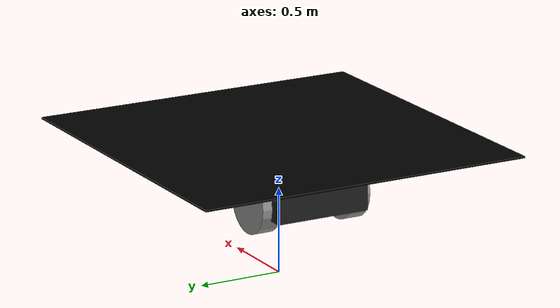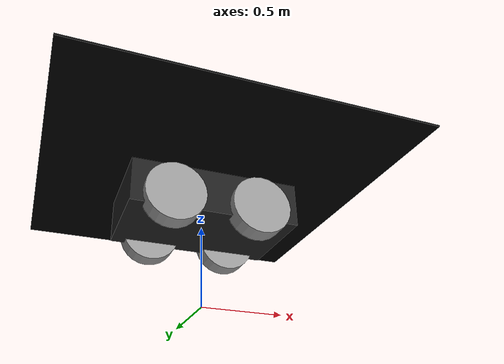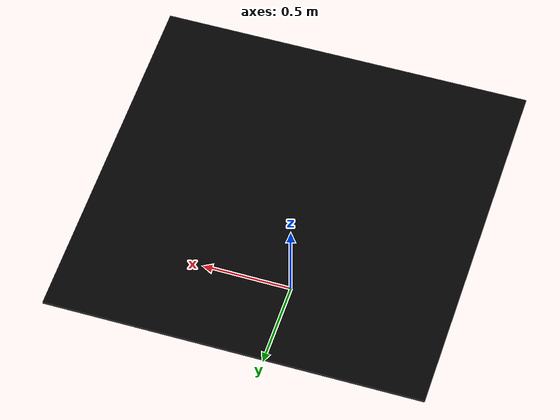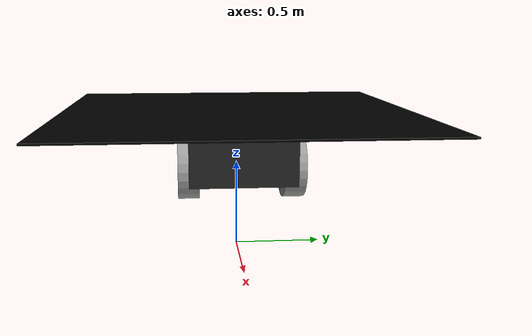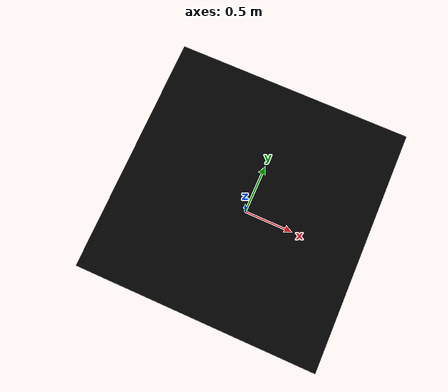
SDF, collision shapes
<?xml version='1.0'?>
<sdf version='1.6'>
  <model name="rover_ardupilot">
    <pose>0 0 0.5 0 0 0</pose>
    <include>
      <uri>model://husky</uri>
      <pose>0 0 0 0 0 0</pose>
    </include>

    <link name="cam_link">
      <pose>0 0 0 0 0 0 </pose>
      <inertial>
        <mass>0.01</mass>
        <inertia>
          <ixx>0.0001</ixx>
          <iyy>0.0001</iyy>
          <izz>0.0001</izz>
        </inertia>
      </inertial>
    <sensor name="chase_cam" type="camera">
      <pose>-3 -1 1.4 0 0.37 0</pose>
      <camera>
        <horizontal_fov>1.2</horizontal_fov>
        <image>
          <width>1920</width>
          <height>1080</height>
        </image>
        <clip>
          <near>0.1</near>
          <far>1000</far>
        </clip>
      </camera>
      <always_on>0</always_on>
      <update_rate>60</update_rate>
      <visualize>false</visualize>
    </sensor>
  </link>
    <joint name="camera_mount" type="fixed">
      <child>cam_link</child>
      <parent>husky::base_link</parent>
      <axis>
        <xyz>0 0 1</xyz>
        <limit>
          <upper>0</upper>
          <lower>0</lower>
        </limit>
      </axis>
    </joint>

    <link name='imu_link'>
      <pose>0 0 0 0 0 0</pose>
      <inertial>
        <pose>0 0 0 0 0 0</pose>
        <mass>0.015</mass>
        <inertia>
          <ixx>1e-05</ixx>
          <ixy>0</ixy>
          <ixz>0</ixz>
          <iyy>1e-05</iyy>
          <iyz>0</iyz>
          <izz>1e-05</izz>
        </inertia>
      </inertial>
      <sensor name="imu_sensor" type="imu">
        <pose>0 0 0 3.141593 0 0</pose>
        <always_on>1</always_on>
        <update_rate>1000.0</update_rate>
      </sensor>
    </link>
    <joint name='imu_joint' type='revolute'>
      <child>imu_link</child>
      <parent>husky::base_link</parent>
      <axis>
        <xyz>1 0 0</xyz>
        <limit>
          <lower>0</lower>
          <upper>0</upper>
          <effort>0</effort>
          <velocity>0</velocity>
        </limit>
        <dynamics>
          <damping>0.7</damping>
        </dynamics>
        <use_parent_model_frame>1</use_parent_model_frame>
      </axis>
    </joint>

    <plugin name="ArduCopter_Plugin" filename="libArduPilotPlugin.so">
      <fdm_addr>127.0.0.1</fdm_addr>
      <fdm_port_in>9002</fdm_port_in>
      <fdm_port_out>9003</fdm_port_out>
      <!--
          Require by APM :
          Only change model and gazebo from XYZ to XY-Z coordinates
      -->
      <modelXYZToAirplaneXForwardZDown>0 0 0 3.141593 0 0</modelXYZToAirplaneXForwardZDown>
      <gazeboXYZToNED>0 0 0 3.141593 0 0</gazeboXYZToNED>
      <imuName>rover_ardupilot::imu_link::imu_sensor</imuName>
      <connectionTimeoutMaxCount>5</connectionTimeoutMaxCount>
      <!--
          incoming control command [0, 1]
          so offset it by 0 to get [0, 1]
          and divide max target by 1.
          offset = 0
          multiplier = 838 max rpm / 1 = 838
        -->
      <control channel="0">
        <type>VELOCITY</type>
        <offset>-0.5</offset>
        <p_gain>1</p_gain>
        <i_gain>0</i_gain>
        <d_gain>0</d_gain>
        <i_max>0</i_max>
        <i_min>0</i_min>
        <cmd_max>10</cmd_max>
        <cmd_min>-10</cmd_min>
        <jointName>husky::front_left_joint</jointName>
        <multiplier>70</multiplier>
      </control>
      <control channel="2">
        <type>VELOCITY</type>
        <offset>-0.5</offset>
        <p_gain>1</p_gain>
        <i_gain>0</i_gain>
        <d_gain>0</d_gain>
        <i_max>0</i_max>
        <i_min>0</i_min>
        <cmd_max>10</cmd_max>
        <cmd_min>-10</cmd_min>
        <jointName>husky::front_right_joint</jointName>
        <multiplier>70</multiplier>
      </control>
      <control channel="0">
        <type>VELOCITY</type>
        <offset>-0.5</offset>
        <p_gain>1</p_gain>
        <i_gain>0</i_gain>
        <d_gain>0</d_gain>
        <i_max>0</i_max>
        <i_min>0</i_min>
        <cmd_max>10</cmd_max>
        <cmd_min>-10</cmd_min>
        <jointName>husky::back_left_joint</jointName>
        <multiplier>70</multiplier>
      </control>
      <control channel="2">
        <type>VELOCITY</type>
        <offset>-0.5</offset>
        <p_gain>1</p_gain>
        <i_gain>0</i_gain>
        <d_gain>0</d_gain>
        <i_max>0</i_max>
        <i_min>0</i_min>
        <cmd_max>10</cmd_max>
        <cmd_min>-10</cmd_min>
        <jointName>husky::back_right_joint</jointName>
        <multiplier>70</multiplier>
      </control>
    </plugin>

  </model>
</sdf>

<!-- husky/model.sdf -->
<sdf version="1.5">
  <model name="husky">
    <pose>0 0 .5 0 0 0</pose>
    <!-- Main Chassis -->
    <link name="base_link">
      <!-- Physics -->
      <collision name="collision">
        <pose>0 0 0.1 0 0 0</pose>
        <geometry>
          <box>
            <size>1.0074 0.5709 0.2675</size>
          </box>
        </geometry>
      </collision>
      <inertial>
        <mass>33.855</mass>
        <pose>-0.0856132 -0.000839955 0.238145 0 0 0</pose>
        <inertia>
          <ixx>2.2343</ixx>
          <ixy>-0.023642</ixy>
          <ixz>0.275174</ixz>
          <iyy>3.42518</iyy>
          <iyz>0.00239624</iyz>
          <izz>2.1241</izz>
        </inertia>
      </inertial>
      <!-- Visual -->
      <!-- Base frame -->
      <visual name="base">
        <pose>0 0 0 0 0 0</pose>
        <geometry>
          <mesh>
            <uri>model://husky/meshes/base_link.stl</uri>
          </mesh>
        </geometry>
        <material>
          <script>
            <name>Gazebo/FlatBlack</name>
          </script>
        </material>
      </visual>
      <!-- Top Plate -->
      <visual name="top_plate">
        <pose>0 0 0 0 0 0</pose>
        <geometry>
          <mesh>
            <uri>model://husky/meshes/top_plate.stl</uri>
          </mesh>
        </geometry>
        <material>
          <script>
            <name>Gazebo/Yellow</name>
          </script>
        </material>
      </visual>
      <!-- Front Bumper -->
      <visual name="front_bumper">
        <pose>0.47 0 0.091 0 0 0</pose>
        <geometry>
          <mesh>
            <uri>model://husky/meshes/bumper.stl</uri>
          </mesh>
        </geometry>
        <material>
          <script>
            <name>Gazebo/FlatBlack</name>
          </script>
        </material>
      </visual>
      <!-- Rear Bumper -->
      <visual name="rear_bumper">
        <pose>-0.47 0 0.091 0 0 3.141</pose>
        <geometry>
          <mesh>
            <uri>model://husky/meshes/bumper.stl</uri>
          </mesh>
        </geometry>
        <material>
          <script>
            <name>Gazebo/FlatBlack</name>
          </script>
        </material>
      </visual>
      <!-- User Rail -->
      <visual name="user_rail">
        <pose>0.272 0 0.245 0 0 0</pose>
        <geometry>
          <mesh>
            <uri>model://husky/meshes/user_rail.stl</uri>
          </mesh>
        </geometry>
        <material>
          <script>
            <name>Gazebo/Grey</name>
          </script>
        </material>
      </visual>
    </link>
    <!-- Back Left Wheel -->
    <link name="back_left_wheel">
      <pose>-0.256 0.285475 0.035 0 0 0</pose>
      <inertial>
        <mass>2.6357</mass>
        <pose>0 0 0 0 0 0</pose>
        <inertia>
          <ixx>0.0246688</ixx>
          <ixy>0</ixy>
          <ixz>0</ixz>
          <iyy>0.0246688</iyy>
          <iyz>0</iyz>
          <izz>0.0441058</izz>
        </inertia>
      </inertial>
      <collision name="back_left_wheel_collision">
        <pose>0 0 0 -1.5707 0 0</pose>
        <geometry>
          <cylinder>
            <radius>0.17775</radius>
            <length>0.1143</length>
          </cylinder>
        </geometry>
        <surface>
          <friction>
            <ode>
              <mu>100000.0</mu>
              <mu2>100000.0</mu2>
              <slip1>0.0</slip1>
              <slip2>0.0</slip2>
            </ode>
          </friction>
        </surface>
      </collision>
      <visual name="back_left_wheel">
        <pose>0 0 0 -3.14159 0 0</pose>
        <geometry>
          <mesh>
            <uri>model://husky/meshes/wheel.stl</uri>
          </mesh>
        </geometry>
        <material>
          <script>
            <name>Gazebo/Grey</name>
          </script>
        </material>
      </visual>
    </link>
    <joint name="back_left_joint" type="revolute">
      <parent>base_link</parent>
      <child>back_left_wheel</child>
      <axis>
        <xyz>0 1 0</xyz>
        <use_parent_model_frame>true</use_parent_model_frame>
      </axis>
      <physics>
        <ode>
          <limit>
            <cfm>0.000000</cfm>
            <erp>0.900000</erp>
          </limit>
        </ode>
      </physics>
    </joint>
    <!-- Back Right Wheel -->
    <link name="back_right_wheel">
      <pose>-0.256 -0.285475 0.035 0 0 0</pose>
      <inertial>
        <mass>2.6357</mass>
        <pose>0 0 0 0 0 0</pose>
        <inertia>
          <ixx>0.0246688</ixx>
          <ixy>0</ixy>
          <ixz>0</ixz>
          <iyy>0.0246688</iyy>
          <iyz>0</iyz>
          <izz>0.0441058</izz>
        </inertia>
      </inertial>
      <collision name="back_right_wheel_collision">
        <pose>0 0 0 -1.5707 0 0</pose>
        <geometry>
          <cylinder>
            <radius>0.17775</radius>
            <length>0.1143</length>
          </cylinder>
        </geometry>
        <surface>
          <friction>
            <ode>
              <mu>100000.0</mu>
              <mu2>100000.0</mu2>
              <slip1>0.0</slip1>
              <slip2>0.0</slip2>
            </ode>
          </friction>
        </surface>
      </collision>
      <visual name="back_right_wheel">
        <pose>0 0 0 -3.14159 0 0</pose>
        <geometry>
          <mesh>
            <uri>model://husky/meshes/wheel.stl</uri>
          </mesh>
        </geometry>
        <material>
          <script>
            <name>Gazebo/Grey</name>
          </script>
        </material>
      </visual>
    </link>
    <joint name="back_right_joint" type="revolute">
      <parent>base_link</parent>
      <child>back_right_wheel</child>
      <axis>
        <xyz>0 1 0</xyz>
        <use_parent_model_frame>true</use_parent_model_frame>
      </axis>
      <physics>
        <ode>
          <limit>
            <cfm>0.000000</cfm>
            <erp>0.900000</erp>
          </limit>
        </ode>
      </physics>
    </joint>
    <!-- Front Left Wheel -->
    <link name="front_left_wheel">
      <pose>0.256 0.285475 0.035 0 0 0</pose>
      <inertial>
        <mass>2.6357</mass>
        <pose>0 0 0 0 0 0</pose>
        <inertia>
          <ixx>0.0246688</ixx>
          <ixy>0</ixy>
          <ixz>0</ixz>
          <iyy>0.0246688</iyy>
          <iyz>0</iyz>
          <izz>0.0441058</izz>
        </inertia>
      </inertial>
      <collision name="front_left_wheel_collision">
        <pose>0 0 0 -1.5707 0 0</pose>
        <geometry>
          <cylinder>
            <radius>0.17775</radius>
            <length>0.1143</length>
          </cylinder>
        </geometry>
        <surface>
          <friction>
            <ode>
              <mu>100000.0</mu>
              <mu2>100000.0</mu2>
              <slip1>0.0</slip1>
              <slip2>0.0</slip2>
            </ode>
          </friction>
        </surface>
      </collision>
      <visual name="front_left_wheel">
        <pose>0 0 0 -3.14159 0 0</pose>
        <geometry>
          <mesh>
            <uri>model://husky/meshes/wheel.stl</uri>
          </mesh>
        </geometry>
        <material>
          <script>
            <name>Gazebo/Grey</name>
          </script>
        </material>
      </visual>
    </link>
    <joint name="front_left_joint" type="revolute">
      <parent>base_link</parent>
      <child>front_left_wheel</child>
      <axis>
        <xyz>0 1 0</xyz>
        <use_parent_model_frame>true</use_parent_model_frame>
      </axis>
      <physics>
        <ode>
          <limit>
            <cfm>0.000000</cfm>
            <erp>0.900000</erp>
          </limit>
        </ode>
      </physics>
    </joint>
    <!-- Front Right Wheel -->
    <link name="front_right_wheel">
      <pose>0.256 -0.285475 0.035 0 0 0</pose>
      <inertial>
        <mass>2.6357</mass>
        <pose>0 0 0 0 0 0</pose>
        <inertia>
          <ixx>0.0246688</ixx>
          <ixy>0</ixy>
          <ixz>0</ixz>
          <iyy>0.0246688</iyy>
          <iyz>0</iyz>
          <izz>0.0441058</izz>
        </inertia>
      </inertial>
      <collision name="front_right_wheel_collision">
        <pose>0 0 0 -1.5707 0 0</pose>
        <geometry>
          <cylinder>
            <radius>0.17775</radius>
            <length>0.1143</length>
          </cylinder>
        </geometry>
        <surface>
          <friction>
            <ode>
              <mu>100000.0</mu>
              <mu2>100000.0</mu2>
              <slip1>0.0</slip1>
              <slip2>0.0</slip2>
            </ode>
          </friction>
        </surface>
      </collision>
      <visual name="front_right_wheel">
        <pose>0 0 0 -3.14159 0 0</pose>
        <geometry>
          <mesh>
            <uri>model://husky/meshes/wheel.stl</uri>
          </mesh>
        </geometry>
        <material>
          <script>
            <name>Gazebo/Grey</name>
          </script>
        </material>
      </visual>
    </link>
    <joint name="front_right_joint" type="revolute">
      <parent>base_link</parent>
      <child>front_right_wheel</child>
      <axis>
        <xyz>0 1 0</xyz>
        <use_parent_model_frame>true</use_parent_model_frame>
      </axis>
      <physics>
        <ode>
          <limit>
            <cfm>0.000000</cfm>
            <erp>0.900000</erp>
          </limit>
        </ode>
      </physics>
    </joint>

    <link name="target">
      <pose>0 0 0.3 0 0 0</pose>

      <collision name="target">
        <pose>0 0 0 0 0 0</pose>
        <geometry>
          <box>
            <size>2 2 .01</size>
          </box>
        </geometry>
        <surface>
          <friction>
            <ode>
              <mu>100000.0</mu>
              <mu2>100000.0</mu2>
              <slip1>0.0</slip1>
              <slip2>0.0</slip2>
            </ode>
          </friction>
        </surface>
      </collision>
      <visual name="target">
        <pose>0 0 0 0 0 0</pose>
        <geometry>
          <box>
            <size>2 2 .01</size>
          </box>
        </geometry>
        <material> <!-- LED material -->
          <ambient>0 0 0 1</ambient>
          <diffuse>0 0 0 1</diffuse>
          <specular>0 0 0 0</specular>
          <emissive>1 0 0 1</emissive>
        </material>
      </visual>
    </link>
    <joint name="target" type="fixed">
      <parent>base_link</parent>
      <child>target</child>
      <axis>
        <xyz>0 0 1</xyz>
        <use_parent_model_frame>true</use_parent_model_frame>
      </axis>
    </joint>

    <plugin name="husky_diff_controller" filename="libhusky_gazebo_plugins.so">
      <alwaysOn>true</alwaysOn>
      <updateRate>100.0</updateRate>
      <backLeftJoint>back_left_joint</backLeftJoint>
      <backRightJoint>back_right_joint</backRightJoint>
      <frontLeftJoint>front_left_joint</frontLeftJoint>
      <frontRightJoint>front_right_joint</frontRightJoint>
      <wheelSeparation>0.5709</wheelSeparation>
      <wheelDiameter>0.3555</wheelDiameter>
      <torque>35</torque>
    </plugin>
  </model>
</sdf>
